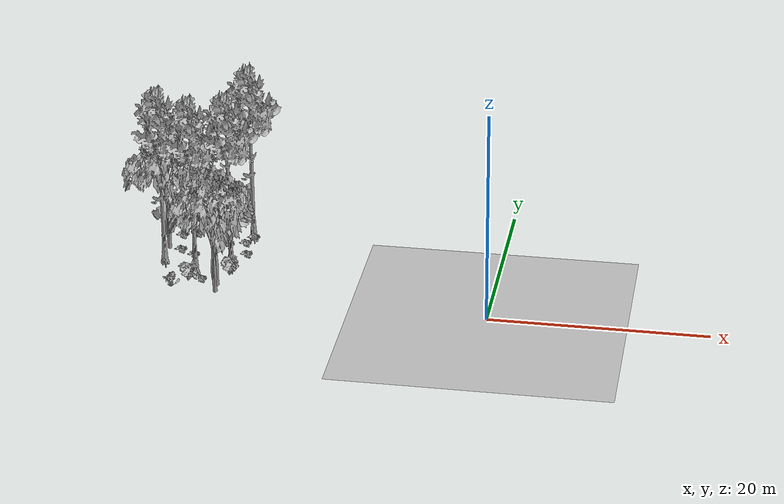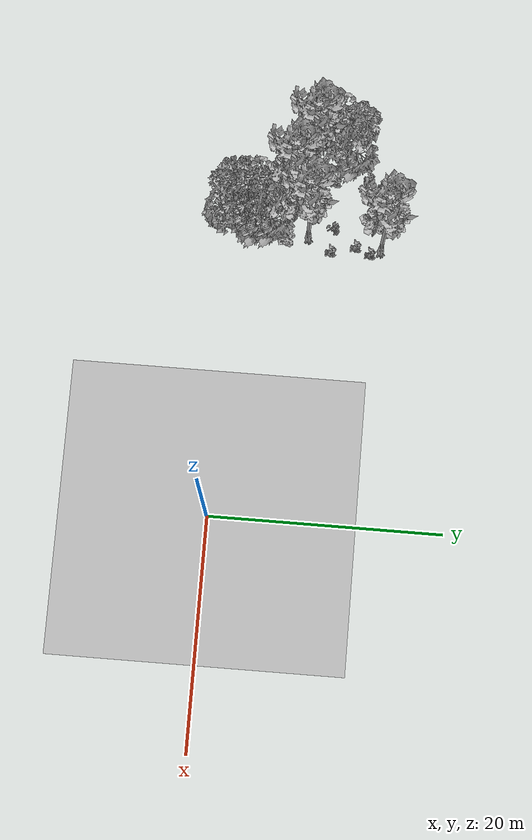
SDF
<sdf version="1.7">
 <world name="default">
  <model name="ground_plane">
   <static>1</static>
   <link name="link">
    <collision name="collision">
     <pose>-50 0 0 0 -0 0</pose>
     <geometry><plane><normal>0 0 1</normal><size>80 80</size></plane></geometry>
     <surface><contact><ode><min_depth>0.01</min_depth><max_vel>0</max_vel></ode></contact></surface>
    </collision>
    <visual name="grass">
     <cast_shadows>0</cast_shadows>
     <geometry>
      <mesh>
       <scale>0.46714285714285714 0.46714285714285714 0.1</scale>
       <uri>file://grass_plane/meshes/grass_plane.dae</uri>
      </mesh>
     </geometry>
    </visual>
   </link>
  </model>
  <model name="Tree 72">
   <static>1</static>
   <pose>-24.29433852121565 13.069423138060337 0 1.57079 -0 0</pose>
   <link name="link">
    <collision name="collision">
     <geometry><mesh><scale>3.5 5 3.5</scale><uri>model://tree_9/meshes/tree_9.obj</uri></mesh></geometry>
    </collision>
    <visual name="visual">
     <geometry><mesh><scale>3.5 5 3.5</scale><uri>model://tree_9/meshes/tree_9.obj</uri></mesh></geometry>
    </visual>
   </link>
  </model>
  <model name="Tree 112">
   <static>1</static>
   <pose>-25.496326524204427 2.4686966191376243 0 1.57079 -0 0</pose>
   <link name="link">
    <collision name="collision">
     <geometry><mesh><scale>3.5 5 3.5</scale><uri>model://tree_2/meshes/tree_2.obj</uri></mesh></geometry>
    </collision>
    <visual name="visual">
     <geometry><mesh><scale>3.5 5 3.5</scale><uri>model://tree_2/meshes/tree_2.obj</uri></mesh></geometry>
    </visual>
   </link>
  </model>
  <model name="Tree 121">
   <static>1</static>
   <pose>-25.04698819530125 6.721671453790989 0 1.57079 -0 0</pose>
   <link name="link">
    <collision name="collision">
     <geometry><mesh><scale>3.5 5 3.5</scale><uri>model://tree_9/meshes/tree_9.obj</uri></mesh></geometry>
    </collision>
    <visual name="visual">
     <geometry><mesh><scale>3.5 5 3.5</scale><uri>model://tree_9/meshes/tree_9.obj</uri></mesh></geometry>
    </visual>
   </link>
  </model>
  <model name="Tree 151">
   <static>1</static>
   <pose>-25.398502383829147 1.2566457253642866 0 1.57079 -0 0</pose>
   <link name="link">
    <collision name="collision">
     <geometry><mesh><scale>3.5 5 3.5</scale><uri>model://tree_2/meshes/tree_2.obj</uri></mesh></geometry>
    </collision>
    <visual name="visual">
     <geometry><mesh><scale>3.5 5 3.5</scale><uri>model://tree_2/meshes/tree_2.obj</uri></mesh></geometry>
    </visual>
   </link>
  </model>
  <model name="Tree 331">
   <static>1</static>
   <pose>-28.13178000651948 5.384248836412418 0 1.57079 -0 0</pose>
   <link name="link">
    <collision name="collision">
     <geometry><mesh><scale>3.5 5 3.5</scale><uri>model://tree_9/meshes/tree_9.obj</uri></mesh></geometry>
    </collision>
    <visual name="visual">
     <geometry><mesh><scale>3.5 5 3.5</scale><uri>model://tree_9/meshes/tree_9.obj</uri></mesh></geometry>
    </visual>
   </link>
  </model>
  <model name="Tree 593">
   <static>1</static>
   <pose>-31.62916848773918 9.04519904693732 0 1.57079 -0 0</pose>
   <link name="link">
    <collision name="collision">
     <geometry><mesh><scale>3.5 5 3.5</scale><uri>model://tree_2/meshes/tree_2.obj</uri></mesh></geometry>
    </collision>
    <visual name="visual">
     <geometry><mesh><scale>3.5 5 3.5</scale><uri>model://tree_2/meshes/tree_2.obj</uri></mesh></geometry>
    </visual>
   </link>
  </model>
  <model name="Tree 595">
   <static>1</static>
   <pose>-31.474664646125376 6.951345365333239 0 1.57079 -0 0</pose>
   <link name="link">
    <collision name="collision">
     <geometry><mesh><scale>3.5 5 3.5</scale><uri>model://tree_9/meshes/tree_9.obj</uri></mesh></geometry>
    </collision>
    <visual name="visual">
     <geometry><mesh><scale>3.5 5 3.5</scale><uri>model://tree_9/meshes/tree_9.obj</uri></mesh></geometry>
    </visual>
   </link>
  </model>
  <model name="Bush 10">
   <static>1</static>
   <pose>-28.915640621317173 7.912912998523929 0 1.57079 -0 0</pose>
   <link name="link">
    <collision name="collision">
     <geometry><mesh><scale>2 2 2</scale><uri>model://bush_2/meshes/bush_2.obj</uri></mesh></geometry>
     <surface><contact><collide_without_contact>false</collide_without_contact></contact></surface>
    </collision>
    <visual name="visual">
     <geometry><mesh><scale>2 2 2</scale><uri>model://bush_2/meshes/bush_2.obj</uri></mesh></geometry>
    </visual>
   </link>
  </model>
  <model name="Bush 39">
   <static>1</static>
   <pose>-29.646394006905687 12.36760431992068 0 1.57079 -0 0</pose>
   <link name="link">
    <collision name="collision">
     <geometry><mesh><scale>2 2 2</scale><uri>model://bush_2/meshes/bush_2.obj</uri></mesh></geometry>
     <surface><contact><collide_without_contact>false</collide_without_contact></contact></surface>
    </collision>
    <visual name="visual">
     <geometry><mesh><scale>2 2 2</scale><uri>model://bush_2/meshes/bush_2.obj</uri></mesh></geometry>
    </visual>
   </link>
  </model>
  <model name="Bush 98">
   <static>1</static>
   <pose>-24.028661049525397 8.752259197288488 0 1.57079 -0 0</pose>
   <link name="link">
    <collision name="collision">
     <geometry><mesh><scale>2 2 2</scale><uri>model://bush_2/meshes/bush_2.obj</uri></mesh></geometry>
     <surface><contact><collide_without_contact>false</collide_without_contact></contact></surface>
    </collision>
    <visual name="visual">
     <geometry><mesh><scale>2 2 2</scale><uri>model://bush_2/meshes/bush_2.obj</uri></mesh></geometry>
    </visual>
   </link>
  </model>
  <model name="Bush 102">
   <static>1</static>
   <pose>-29.19568343979408 5.44416203062908 0 1.57079 -0 0</pose>
   <link name="link">
    <collision name="collision">
     <geometry><mesh><scale>2 2 2</scale><uri>model://bush_2/meshes/bush_2.obj</uri></mesh></geometry>
     <surface><contact><collide_without_contact>false</collide_without_contact></contact></surface>
    </collision>
    <visual name="visual">
     <geometry><mesh><scale>2 2 2</scale><uri>model://bush_2/meshes/bush_2.obj</uri></mesh></geometry>
    </visual>
   </link>
  </model>
  <model name="Bush 142">
   <static>1</static>
   <pose>-29.54342977368058 12.164231216635592 0 1.57079 -0 0</pose>
   <link name="link">
    <collision name="collision">
     <geometry><mesh><scale>2 2 2</scale><uri>model://bush_2/meshes/bush_2.obj</uri></mesh></geometry>
     <surface><contact><collide_without_contact>false</collide_without_contact></contact></surface>
    </collision>
    <visual name="visual">
     <geometry><mesh><scale>2 2 2</scale><uri>model://bush_2/meshes/bush_2.obj</uri></mesh></geometry>
    </visual>
   </link>
  </model>
  <model name="Bush 217">
   <static>1</static>
   <pose>-24.59958811115051 10.9137794034269 0 1.57079 -0 0</pose>
   <link name="link">
    <collision name="collision">
     <geometry><mesh><scale>2 2 2</scale><uri>model://bush_2/meshes/bush_2.obj</uri></mesh></geometry>
     <surface><contact><collide_without_contact>false</collide_without_contact></contact></surface>
    </collision>
    <visual name="visual">
     <geometry><mesh><scale>2 2 2</scale><uri>model://bush_2/meshes/bush_2.obj</uri></mesh></geometry>
    </visual>
   </link>
  </model>
  <model name="Bush 327">
   <static>1</static>
   <pose>-24.050961175245455 12.184040781096485 0 1.57079 -0 0</pose>
   <link name="link">
    <collision name="collision">
     <geometry><mesh><scale>2 2 2</scale><uri>model://bush_2/meshes/bush_2.obj</uri></mesh></geometry>
     <surface><contact><collide_without_contact>false</collide_without_contact></contact></surface>
    </collision>
    <visual name="visual">
     <geometry><mesh><scale>2 2 2</scale><uri>model://bush_2/meshes/bush_2.obj</uri></mesh></geometry>
    </visual>
   </link>
  </model>
  <model name="Bush 334">
   <static>1</static>
   <pose>-24.743061763868468 4.627893183892098 0 1.57079 -0 0</pose>
   <link name="link">
    <collision name="collision">
     <geometry><mesh><scale>2 2 2</scale><uri>model://bush_1/meshes/bush_1.obj</uri></mesh></geometry>
     <surface><contact><collide_without_contact>false</collide_without_contact></contact></surface>
    </collision>
    <visual name="visual">
     <geometry><mesh><scale>2 2 2</scale><uri>model://bush_1/meshes/bush_1.obj</uri></mesh></geometry>
    </visual>
   </link>
  </model>
  <model name="Bush 370">
   <static>1</static>
   <pose>-25.738650402874548 9.032582992047573 0 1.57079 -0 0</pose>
   <link name="link">
    <collision name="collision">
     <geometry><mesh><scale>2 2 2</scale><uri>model://bush_5/meshes/bush_5.obj</uri></mesh></geometry>
     <surface><contact><collide_without_contact>false</collide_without_contact></contact></surface>
    </collision>
    <visual name="visual">
     <geometry><mesh><scale>2 2 2</scale><uri>model://bush_5/meshes/bush_5.obj</uri></mesh></geometry>
    </visual>
   </link>
  </model>
  <model name="Bush 395">
   <static>1</static>
   <pose>-27.160163127488012 3.3353199072626154 0 1.57079 -0 0</pose>
   <link name="link">
    <collision name="collision">
     <geometry><mesh><scale>2 2 2</scale><uri>model://bush_2/meshes/bush_2.obj</uri></mesh></geometry>
     <surface><contact><collide_without_contact>false</collide_without_contact></contact></surface>
    </collision>
    <visual name="visual">
     <geometry><mesh><scale>2 2 2</scale><uri>model://bush_2/meshes/bush_2.obj</uri></mesh></geometry>
    </visual>
   </link>
  </model>
  <model name="Bush 420">
   <static>1</static>
   <pose>-30.927540098331182 11.666019208321018 0 1.57079 -0 0</pose>
   <link name="link">
    <collision name="collision">
     <geometry><mesh><scale>2 2 2</scale><uri>model://bush_2/meshes/bush_2.obj</uri></mesh></geometry>
     <surface><contact><collide_without_contact>false</collide_without_contact></contact></surface>
    </collision>
    <visual name="visual">
     <geometry><mesh><scale>2 2 2</scale><uri>model://bush_2/meshes/bush_2.obj</uri></mesh></geometry>
    </visual>
   </link>
  </model>
  <model name="Bush 534">
   <static>1</static>
   <pose>-30.353337304619213 8.77337514401222 0 1.57079 -0 0</pose>
   <link name="link">
    <collision name="collision">
     <geometry><mesh><scale>2 2 2</scale><uri>model://bush_2/meshes/bush_2.obj</uri></mesh></geometry>
     <surface><contact><collide_without_contact>false</collide_without_contact></contact></surface>
    </collision>
    <visual name="visual">
     <geometry><mesh><scale>2 2 2</scale><uri>model://bush_2/meshes/bush_2.obj</uri></mesh></geometry>
    </visual>
   </link>
  </model>
  <model name="Bush 546">
   <static>1</static>
   <pose>-28.251708384735608 2.9845469271998155 0 1.57079 -0 0</pose>
   <link name="link">
    <collision name="collision">
     <geometry><mesh><scale>2 2 2</scale><uri>model://bush_1/meshes/bush_1.obj</uri></mesh></geometry>
     <surface><contact><collide_without_contact>false</collide_without_contact></contact></surface>
    </collision>
    <visual name="visual">
     <geometry><mesh><scale>2 2 2</scale><uri>model://bush_1/meshes/bush_1.obj</uri></mesh></geometry>
    </visual>
   </link>
  </model>
  <model name="Bush 548">
   <static>1</static>
   <pose>-29.490740217148105 11.552385231362209 0 1.57079 -0 0</pose>
   <link name="link">
    <collision name="collision">
     <geometry><mesh><scale>2 2 2</scale><uri>model://bush_5/meshes/bush_5.obj</uri></mesh></geometry>
     <surface><contact><collide_without_contact>false</collide_without_contact></contact></surface>
    </collision>
    <visual name="visual">
     <geometry><mesh><scale>2 2 2</scale><uri>model://bush_5/meshes/bush_5.obj</uri></mesh></geometry>
    </visual>
   </link>
  </model>
  <model name="Bush 616">
   <static>1</static>
   <pose>-29.598463258228303 1.7072607496307057 0 1.57079 -0 0</pose>
   <link name="link">
    <collision name="collision">
     <geometry><mesh><scale>2 2 2</scale><uri>model://bush_4/meshes/bush_4.obj</uri></mesh></geometry>
     <surface><contact><collide_without_contact>false</collide_without_contact></contact></surface>
    </collision>
    <visual name="visual">
     <geometry><mesh><scale>2 2 2</scale><uri>model://bush_4/meshes/bush_4.obj</uri></mesh></geometry>
    </visual>
   </link>
  </model>
 </world>
</sdf>
